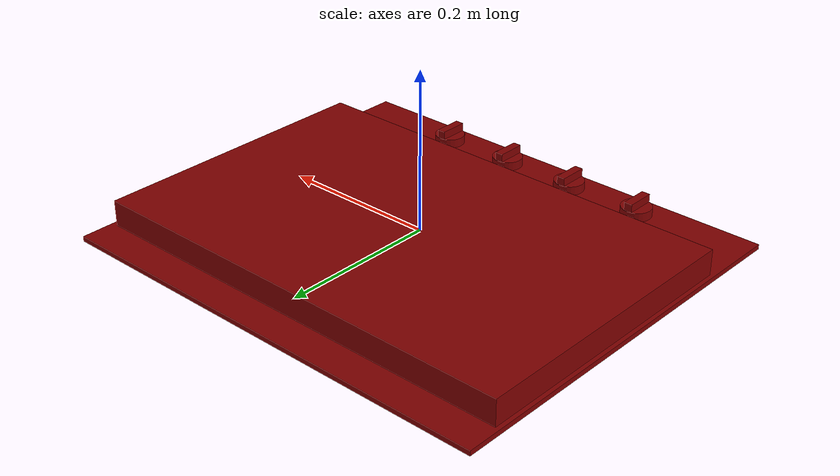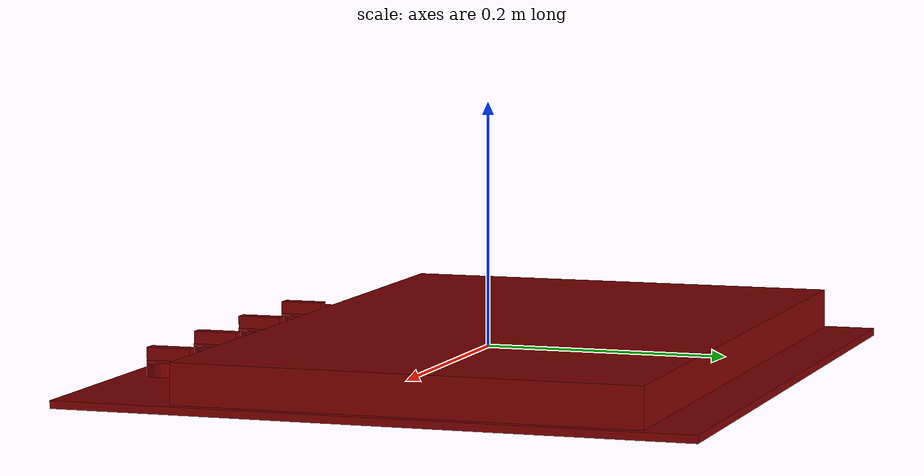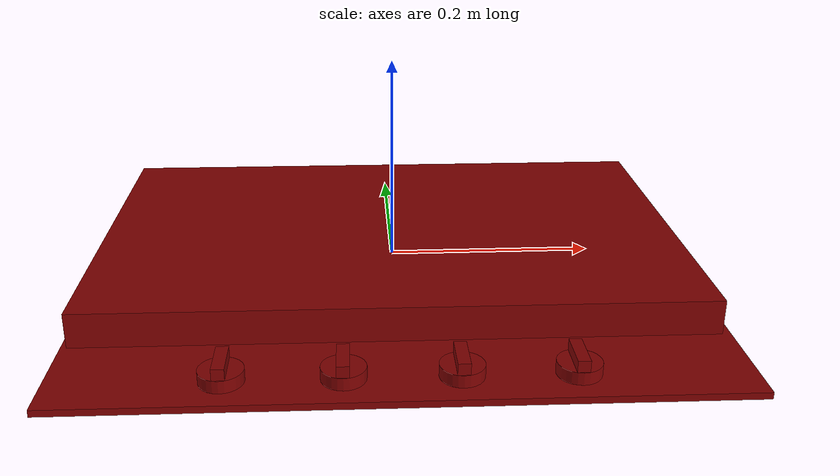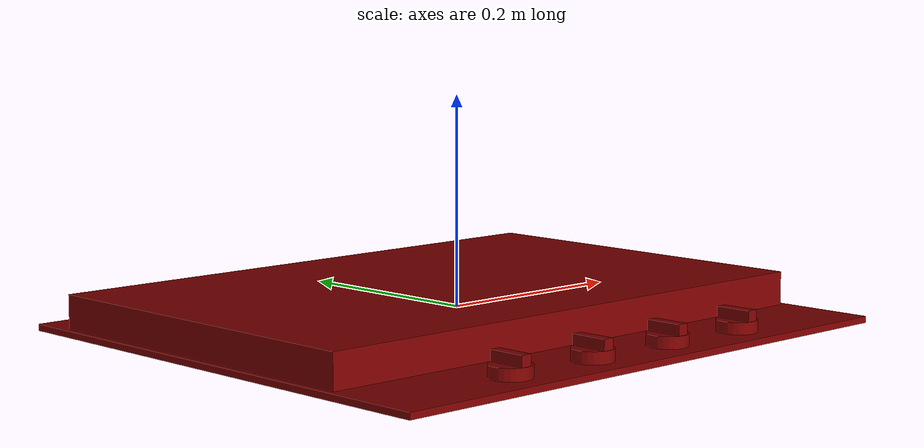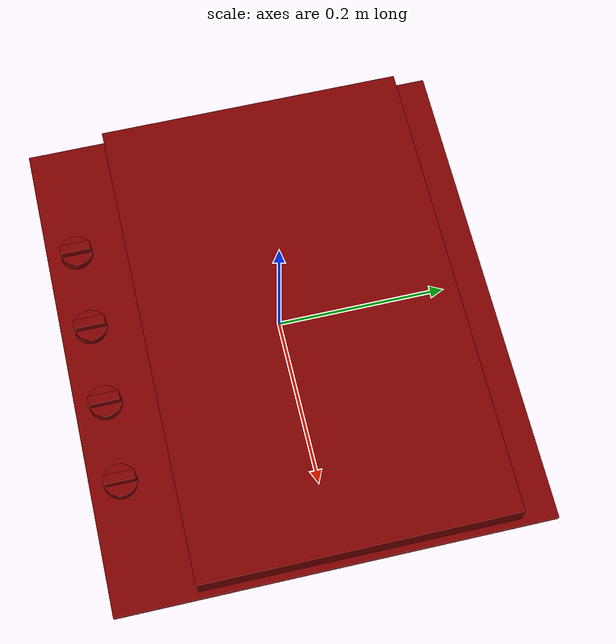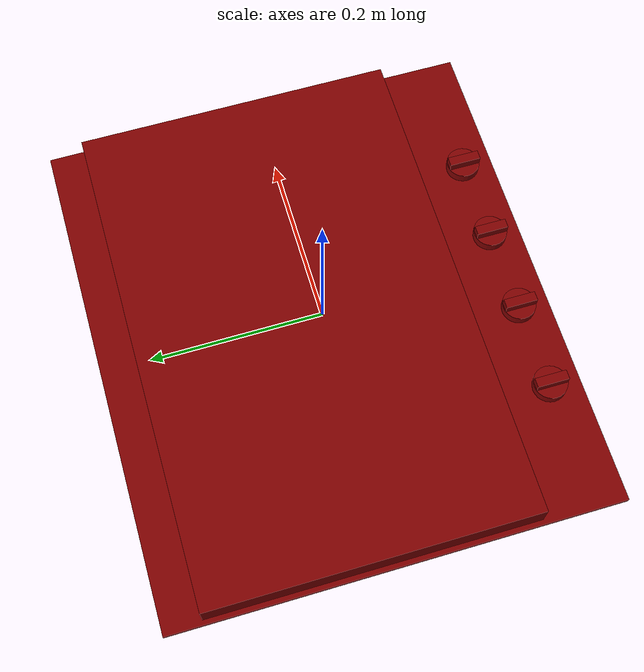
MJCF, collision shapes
<?xml version='1.0' encoding='UTF-8'?>
<mujoco model="model">
  <option timestep="0.002" gravity="0.0 0.0 -9.81"/>
  <compiler angle="radian"/>
  <asset>
    <mesh file="visuals/knob_front_left.obj" name="knob_front_left_vis"/>
    <mesh file="visuals/knob_front_right.obj" name="knob_front_right_vis"/>
    <mesh file="visuals/knob_rear_left.obj" name="knob_rear_left_vis"/>
    <mesh file="visuals/knob_rear_right.obj" name="knob_rear_right_vis"/>
    <mesh file="visuals/Body001.obj" name="Body001_vis"/>
    <texture file="visuals/T_BC001.png" name="Body001_material" type="2d"/>
    <material name="Body001_material" rgba="1 1 1 1.0" texture="Body001_material" shininess="0.1" specular="2"/>
    <texture file="visuals/T_BC001.png" name="knob_front_right_material" type="2d"/>
    <material name="knob_front_right_material" rgba="1 1 1 1.0" texture="knob_front_right_material" shininess="0.30000001192092896" specular="0.3103448502657381"/>
    <texture file="visuals/T_BC001.png" name="knob_front_left_material" type="2d"/>
    <material name="knob_front_left_material" rgba="1 1 1 1.0" texture="knob_front_left_material" shininess="0.30000001192092896" specular="0.3103448502657381"/>
    <texture file="visuals/T_BC001.png" name="knob_rear_left_material" type="2d"/>
    <material name="knob_rear_left_material" rgba="1 1 1 1.0" texture="knob_rear_left_material" shininess="0.30000001192092896" specular="0.3103448502657381"/>
    <texture file="visuals/T_BC001.png" name="knob_rear_right_material" type="2d"/>
    <material name="knob_rear_right_material" rgba="1 1 1 1.0" texture="knob_rear_right_material" shininess="0.30000001192092896" specular="0.3103448502657381"/>
  </asset>
  <default>
    <default class="visual">
      <geom conaffinity="0" contype="0" group="1" type="mesh"/>
    </default>
    <default class="collision">
      <geom group="0" rgba="0.5 0 0 0.5"/>
    </default>
    <default class="spawn">
      <geom group="0" rgba="1 1 1 0.5" contype="0" conaffinity="0"/>
      <site group="0" rgba="1 1 1 0.5"/>
    </default>
    <default class="region">
      <geom group="1" conaffinity="0" contype="0" rgba="0 1 0 0"/>
    </default>
  </default>
  <worldbody>
    <body>
      <body name="object">
        <geom mesh="Body001_vis" type="mesh" solimp="0.998 0.998 0.001" solref="0.001 1" friction="0.95 0.3 0.1" class="visual" material="Body001_material"/>
        <geom class="collision" type="box" pos="0.00027156 0.00091843 -0.01647027" size="0.2963346540927887 0.2565191984176636 0.003129084361717105" quat="1.0 0.0 0.0 0.0"/>
        <geom class="collision" type="box" pos="-0.00095969 0.02750808 0.00226995" size="0.2897818386554718 0.18692438304424286 0.017222028225660324" quat="1.0 0.0 0.0 0.0"/>
        <body name="knob_front_right">
          <joint axis="0.0 0.0 1.0" pos="0.14623035 -0.21961883 -0.00133696" limited="true" name="knob_front_right_joint" range="0.0 3.6651914291880923" type="hinge" damping="0.2" armature="0.01" frictionloss="1"/>
          <geom mesh="knob_front_right_vis" type="mesh" solimp="0.998 0.998 0.001" solref="0.001 1" friction="0.95 0.3 0.1" class="visual" material="knob_front_right_material"/>
          <geom class="collision" type="cylinder" pos="0.14608303 -0.21942134 -0.00728045" size="0.019426897168159485 0.005733807105571032" quat="1.0 0.0 0.0 0.0" friction="100 0.5 0.01"/>
          <geom class="collision" type="box" pos="0.14544936 -0.21942134 0.00367980" size="0.005467358510941267 0.018467804417014122 0.005191871430724859" quat="1.0 0.0 0.0 0.0" name="knob_front_right_main" friction="100 0.5 0.01"/>
        </body>
        <body name="knob_front_left">
          <joint axis="0.0 0.0 1.0" pos="-0.14951883 -0.21961883 -0.00133696" limited="true" name="knob_front_left_joint" range="0.0 3.6651914291880923" type="hinge" damping="0.2" armature="0.01" frictionloss="1"/>
          <geom mesh="knob_front_left_vis" type="mesh" solimp="0.998 0.998 0.001" solref="0.001 1" friction="0.95 0.3 0.1" class="visual" material="knob_front_left_material"/>
          <geom class="collision" type="cylinder" pos="-0.14953047 -0.21942134 -0.00728045" size="0.019426897168159485 0.005733807105571032" quat="1.0 0.0 0.0 0.0" friction="100 0.5 0.01"/>
          <geom class="collision" type="box" pos="-0.14953047 -0.21942134 0.00367980" size="0.0054673561826348305 0.018467804417014122 0.00519186956807971" quat="1.0 0.0 0.0 0.0" name="knob_front_left_main" friction="100 0.5 0.01"/>
        </body>
        <body name="knob_rear_left">
          <joint axis="0.0 0.0 1.0" pos="-0.04911526 -0.21961883 -0.00133696" limited="true" name="knob_rear_left_joint" range="0.0 3.6651914291880923" type="hinge" damping="0.2" armature="0.01" frictionloss="1"/>
          <geom mesh="knob_rear_left_vis" type="mesh" solimp="0.998 0.998 0.001" solref="0.001 1" friction="0.95 0.3 0.1" class="visual" material="knob_rear_left_material"/>
          <geom class="collision" type="cylinder" pos="-0.04930050 -0.21942134 -0.00728045" size="0.019426897168159485 0.005733807105571032" quat="1.0 0.0 0.0 0.0" friction="100 0.5 0.01"/>
          <geom class="collision" type="box" pos="-0.04969703 -0.21942134 0.00367980" size="0.005467357113957405 0.018467804417014122 0.005191870033740997" quat="1.0 0.0 0.0 0.0" name="knob_rear_left_main" friction="100 0.5 0.01"/>
        </body>
        <body name="knob_rear_right">
          <joint axis="0.0 0.0 1.0" pos="0.04901238 -0.21961883 -0.00133696" limited="true" name="knob_rear_right_joint" range="0.0 3.6651914291880923" type="hinge" damping="0.2" armature="0.01" frictionloss="1"/>
          <geom mesh="knob_rear_right_vis" type="mesh" solimp="0.998 0.998 0.001" solref="0.001 1" friction="0.95 0.3 0.1" class="visual" material="knob_rear_right_material"/>
          <geom class="collision" type="cylinder" pos="0.04864764 -0.21942134 -0.00728045" size="0.019426897168159485 0.005733807105571032" quat="1.0 0.0 0.0 0.0" friction="100 0.5 0.01"/>
          <geom class="collision" type="box" pos="0.04817016 -0.21942134 0.00367980" size="0.005467357579618692 0.018467804417014122 0.005191870499402285" quat="1.0 0.0 0.0 0.0" name="knob_rear_right_main" friction="100 0.5 0.01"/>
        </body>
        <site type="cylinder" rgba="0.3 0.4 1 0.5" size="0.028610823675990105 0.004620049148797989" pos="-0.14501911 -0.07171194 0.00966110" name="burner_on_front_left"/>
        <site type="cylinder" rgba="0.3 0.4 1 0.5" size="0.04941902682185173 0.004620048217475414" pos="-0.14461172 0.12555607 0.00966110" name="burner_on_rear_left"/>
        <site type="cylinder" rgba="0.3 0.4 1 0.5" size="0.03761683404445648 0.0046200500801205635" pos="0.14493778 0.12546320 0.00966110" name="burner_on_rear_right"/>
        <site type="cylinder" rgba="0.3 0.4 1 0.5" size="0.03773178905248642 0.0046200500801205635" pos="0.14499480 -0.07214969 0.00966110" name="burner_on_front_right"/>
        <site type="cylinder" rgba="0.5 0 0 0" size="0.028610823675990105 4.999999873689376e-05" pos="-0.14501911 -0.07171194 0.01927962" name="burner_front_left_place_site"/>
        <site type="cylinder" rgba="0.5 0 0 0" size="0.04941902682185173 4.999999509891495e-05" pos="-0.14461172 0.12555607 0.01927962" name="burner_rear_left_place_site"/>
        <site type="cylinder" rgba="0.5 0 0 0" size="0.03761683404445648 5.0000002374872565e-05" pos="0.14493778 0.12546320 0.01927962" name="burner_rear_right_place_site"/>
        <site type="cylinder" rgba="0.5 0 0 0" size="0.03773178905248642 4.999999509891495e-05" pos="0.14499480 -0.07214969 0.01927962" name="burner_front_right_place_site"/>
        <geom class="region" name="reg_main" type="box" pos="9.999999994736442e-09 0.0 -0.01545067" size="0.29668419 0.2564118 0.00505115"/>
      </body>
    </body>
  </worldbody>
  <actuator>
    <motor name="knob_front_right_joint_actuator" joint="knob_front_right_joint" gear="10"/>
    <motor name="knob_front_left_joint_actuator" joint="knob_front_left_joint" gear="10"/>
    <motor name="knob_rear_left_joint_actuator" joint="knob_rear_left_joint" gear="10"/>
    <motor name="knob_rear_right_joint_actuator" joint="knob_rear_right_joint" gear="10"/>
  </actuator>
</mujoco>
